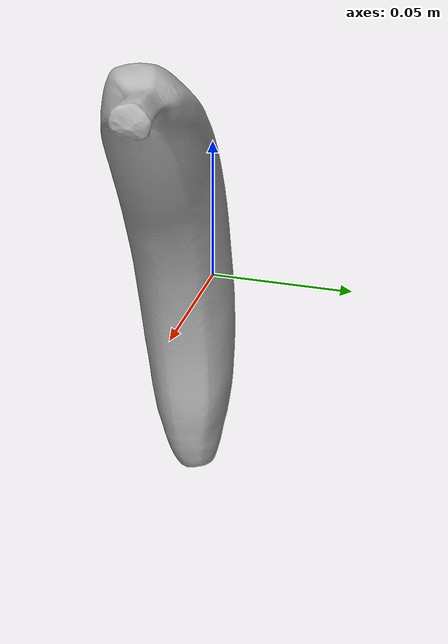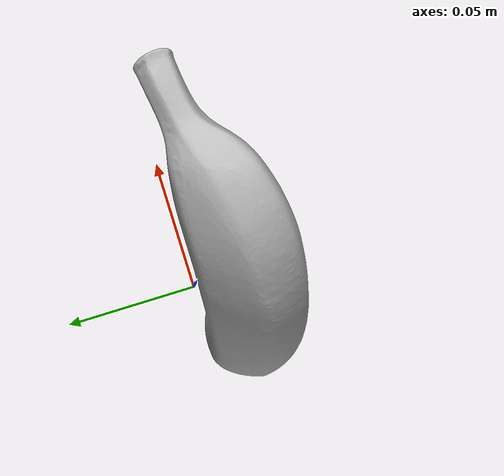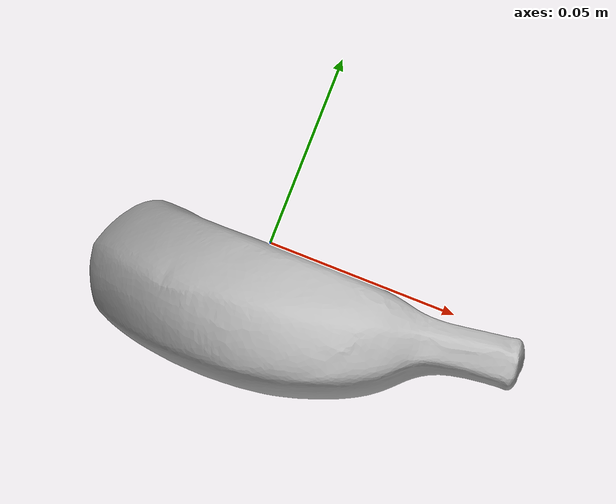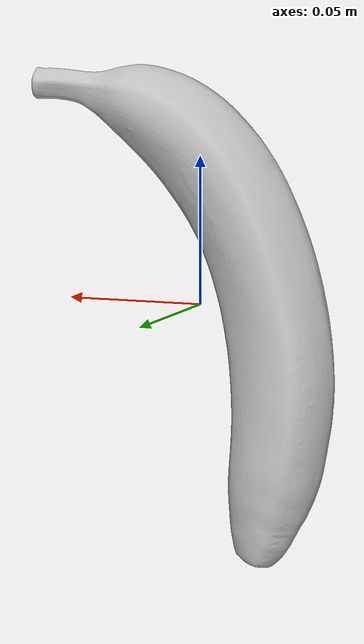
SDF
<?xml version="1.0" ?>
<sdf version="1.6">
  <model name="banana">
    <static>false</static>

    <link name="link">

      <!-- Keep inertial simple and unrotated -->
      <inertial>
        <pose>0 0 0 0 0 0</pose>
        <mass>0.12</mass>
        <inertia>
          <ixx>0.0004</ixx>
          <ixy>0</ixy>
          <ixz>0</ixz>
          <iyy>0.0004</iyy>
          <iyz>0</iyz>
          <izz>0.0001</izz>
        </inertia>
      </inertial>

      <!-- Collision: rotate mesh ONCE here to make the banana "flat" -->
      <collision name="collision">
        <pose>0 0 0 1.5708 0 0</pose>
        <geometry>
          <mesh>
            <uri>model://banana/meshes/nontextured.stl</uri>
            <scale>1 1 1</scale>
          </mesh>
        </geometry>

        <surface>
          <friction>
            <ode>
              <mu>1.5</mu>
              <mu2>1.5</mu2>
            </ode>
          </friction>

          <contact>
            <ode>
              <kp>50000</kp>
              <kd>100</kd>
              <min_depth>0.001</min_depth>
              <max_vel>0.2</max_vel>
            </ode>
          </contact>
        </surface>
      </collision>

      <!-- Visual: MUST match collision orientation -->
      <visual name="visual">
        <pose>0 0 0 1.5708 0 0</pose>
        <geometry>
          <mesh>
            <uri>model://banana/meshes/textured.dae</uri>
            <scale>1 1 1</scale>
          </mesh>
        </geometry>
      </visual>

      <!-- Optional: helps stop micro sliding/rolling -->
      <velocity_decay>
        <linear>0.2</linear>
        <angular>0.2</angular>
      </velocity_decay>

    </link>
  </model>
</sdf>
